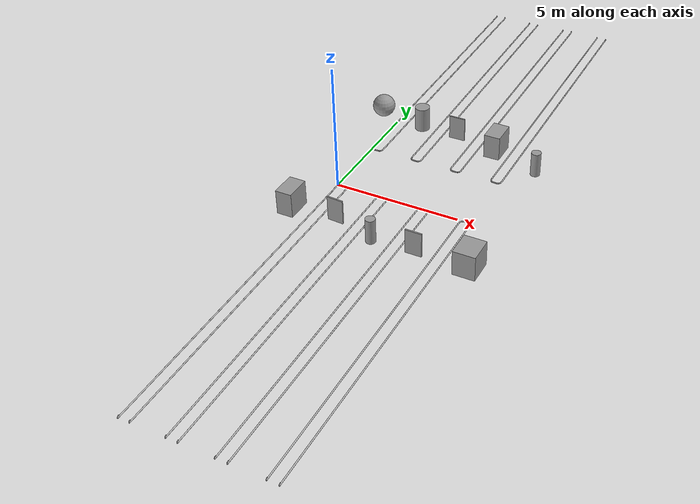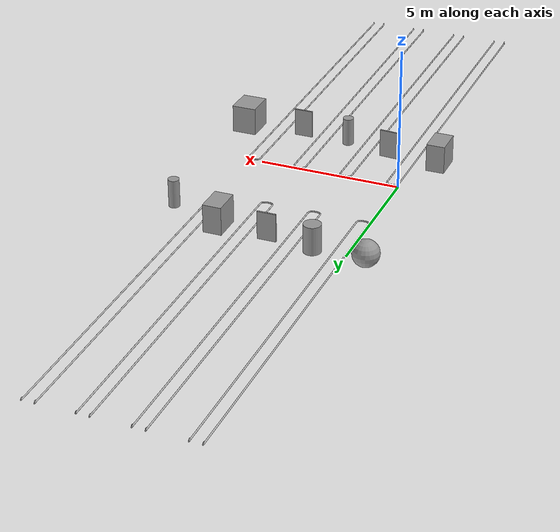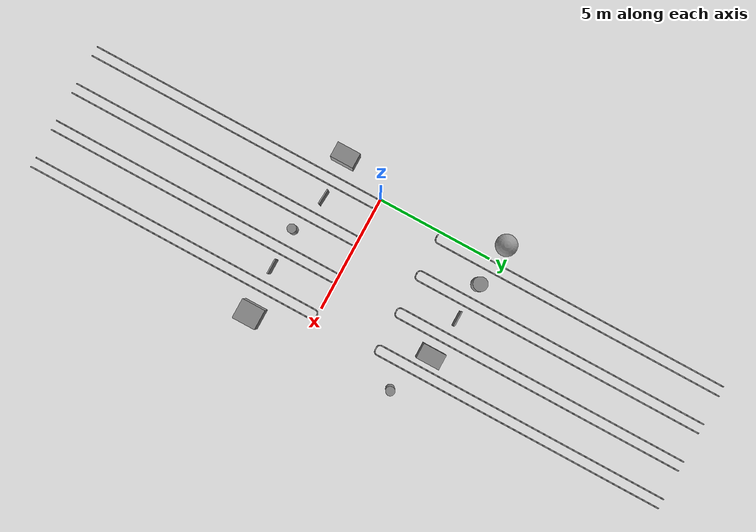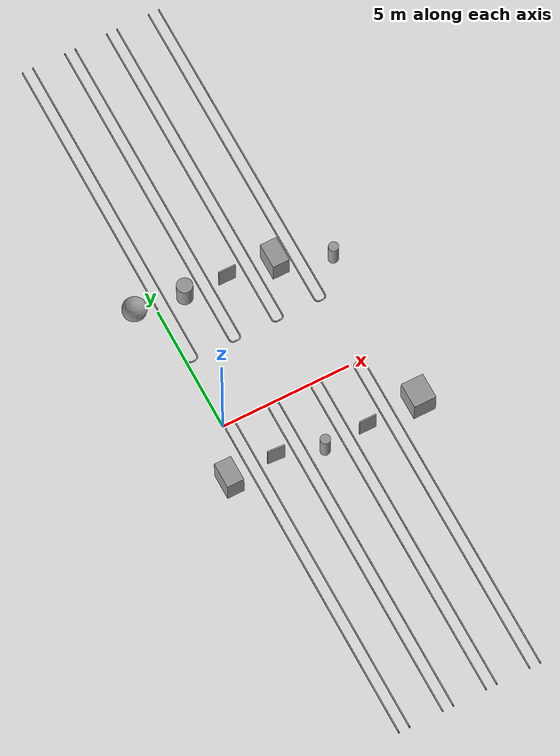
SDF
<sdf version="1.7">
 <world name="default">
  <light name="sun" type="directional">
   <pose>0 0 10 0 -0 0</pose>
   <diffuse>0.8 0.8 0.8 1</diffuse>
   <specular>0.2 0.2 0.2 1</specular>
   <attenuation>
    <range>1000</range>
    <constant>0.9</constant>
    <linear>0.01</linear>
    <quadratic>0.001</quadratic>
   </attenuation>
   <direction>-0.5 0.1 -0.9</direction>
   <spot><inner_angle>0</inner_angle><outer_angle>0</outer_angle><falloff>0</falloff></spot>
  </light>
  <model name="ground_plane">
   <static>1</static>
   <link name="link">
    <collision name="collision">
     <geometry><plane><normal>0 0 1</normal><size>100 100</size></plane></geometry>
     <surface><friction><ode><mu>10</mu><mu2>5</mu2></ode></friction></surface>
    </collision>
   </link>
  </model>
  <model name="rail_1">
   <static>1</static>
   <link name="link">
    <collision name="collision">
     <geometry><mesh><uri>model://rail/ExtendedTubeRail.dae</uri><scale>0.001 0.001 0.001</scale></mesh></geometry>
    </collision>
    <visual name="visual">
     <geometry><mesh><uri>model://rail/ExtendedTubeRail.dae</uri><scale>0.001 0.001 0.001</scale></mesh></geometry>
    </visual>
   </link>
   <pose>0 0 0.01265 1.57 -0 -3.14159</pose>
  </model>
  <gravity>0 0 -9.8</gravity>
  <magnetic_field>6e-06 2.3e-05 -4.2e-05</magnetic_field>
  <atmosphere type="adiabatic"/>
  <physics type="ode">
   <max_step_size>0.001</max_step_size>
   <real_time_factor>1</real_time_factor>
   <real_time_update_rate>1000</real_time_update_rate>
  </physics>
  <scene><ambient>0.4 0.4 0.4 1</ambient><background>0.7 0.7 0.7 1</background><shadows>1</shadows></scene>
  <spherical_coordinates>
   <surface_model>EARTH_WGS84</surface_model>
   <latitude_deg>0</latitude_deg>
   <longitude_deg>0</longitude_deg>
   <elevation>0</elevation>
   <heading_deg>0</heading_deg>
  </spherical_coordinates>
  <model name="rail_2">
   <static>1</static>
   <link name="link">
    <collision name="collision">
     <geometry><mesh><uri>model://rail/ExtendedTubeRail.dae</uri><scale>0.001 0.001 0.001</scale></mesh></geometry>
    </collision>
    <visual name="visual">
     <geometry><mesh><uri>model://rail/ExtendedTubeRail.dae</uri><scale>0.001 0.001 0.001</scale></mesh></geometry>
    </visual>
   </link>
   <pose>1.7038 0 0.01265 1.57 -0 -3.14159</pose>
  </model>
  <model name="rail_3">
   <static>1</static>
   <link name="link">
    <collision name="collision">
     <geometry><mesh><uri>model://rail/ExtendedTubeRail.dae</uri><scale>0.001 0.001 0.001</scale></mesh></geometry>
    </collision>
    <visual name="visual">
     <geometry><mesh><uri>model://rail/ExtendedTubeRail.dae</uri><scale>0.001 0.001 0.001</scale></mesh></geometry>
    </visual>
   </link>
   <pose>3.4076 0 0.01265 1.57 -0 -3.14159</pose>
  </model>
  <model name="rail_4">
   <static>1</static>
   <link name="link">
    <collision name="collision">
     <geometry><mesh><uri>model://rail/ExtendedTubeRail.dae</uri><scale>0.001 0.001 0.001</scale></mesh></geometry>
    </collision>
    <visual name="visual">
     <geometry><mesh><uri>model://rail/ExtendedTubeRail.dae</uri><scale>0.001 0.001 0.001</scale></mesh></geometry>
    </visual>
   </link>
   <pose>5.1114 0 0.01265 1.57 -0 -3.14159</pose>
  </model>
  <model name="rail_5">
   <static>1</static>
   <link name="link">
    <collision name="collision">
     <geometry><mesh><uri>model://rail/ExtendedTubeRail.dae</uri><scale>0.001 0.001 0.001</scale></mesh></geometry>
    </collision>
    <visual name="visual">
     <geometry><mesh><uri>model://rail/ExtendedTubeRail.dae</uri><scale>0.001 0.001 0.001</scale></mesh></geometry>
    </visual>
   </link>
   <pose>0.4754 2.676 0.01265 1.57159 -0 3e-06</pose>
  </model>
  <model name="rail_6">
   <static>1</static>
   <link name="link">
    <collision name="collision">
     <geometry><mesh><uri>model://rail/ExtendedTubeRail.dae</uri><scale>0.001 0.001 0.001</scale></mesh></geometry>
    </collision>
    <visual name="visual">
     <geometry><mesh><uri>model://rail/ExtendedTubeRail.dae</uri><scale>0.001 0.001 0.001</scale></mesh></geometry>
    </visual>
   </link>
   <pose>2.1792 2.676 0.01265 1.57159 -0 3e-06</pose>
  </model>
  <model name="rail_7">
   <static>1</static>
   <link name="link">
    <collision name="collision">
     <geometry><mesh><uri>model://rail/ExtendedTubeRail.dae</uri><scale>0.001 0.001 0.001</scale></mesh></geometry>
    </collision>
    <visual name="visual">
     <geometry><mesh><uri>model://rail/ExtendedTubeRail.dae</uri><scale>0.001 0.001 0.001</scale></mesh></geometry>
    </visual>
   </link>
   <pose>3.883 2.676 0.01265 1.57159 -0 3e-06</pose>
  </model>
  <model name="rail_8">
   <static>1</static>
   <link name="link">
    <collision name="collision">
     <geometry><mesh><uri>model://rail/ExtendedTubeRail.dae</uri><scale>0.001 0.001 0.001</scale></mesh></geometry>
    </collision>
    <visual name="visual">
     <geometry><mesh><uri>model://rail/ExtendedTubeRail.dae</uri><scale>0.001 0.001 0.001</scale></mesh></geometry>
    </visual>
   </link>
   <pose>5.5868 2.676 0.01265 1.57159 -0 3e-06</pose>
  </model>
  <model name="unit_box">
   <pose>-0.804892 -2.01882 0.5 0 -0 -4e-06</pose>
   <link name="link">
    <inertial>
     <mass>1</mass>
     <inertia>
      <ixx>0.166667</ixx>
      <ixy>0</ixy>
      <ixz>0</ixz>
      <iyy>0.166667</iyy>
      <iyz>0</iyz>
      <izz>0.166667</izz>
     </inertia>
    </inertial>
    <collision name="collision"><geometry><box><size>0.65196 1 1</size></box></geometry></collision>
    <visual name="visual">
     <geometry><box><size>0.65196 1 1</size></box></geometry>
     <material>
      <script><name>Gazebo/Grey</name><uri>file://media/materials/scripts/gazebo.material</uri></script>
     </material>
    </visual>
   </link>
  </model>
  <model name="unit_box_clone">
   <pose>1.0497 -2.00045 0.499999 -1e-06 -4e-06 -0.06767</pose>
   <link name="link">
    <inertial>
     <mass>1</mass>
     <inertia>
      <ixx>0.166667</ixx>
      <ixy>0</ixy>
      <ixz>0</ixz>
      <iyy>0.166667</iyy>
      <iyz>0</iyz>
      <izz>0.166667</izz>
     </inertia>
    </inertial>
    <collision name="collision"><geometry><box><size>0.65196 0.0580362 1</size></box></geometry></collision>
    <visual name="visual">
     <geometry><box><size>0.65196 0.0580362 1</size></box></geometry>
     <material>
      <script><name>Gazebo/Grey</name><uri>file://media/materials/scripts/gazebo.material</uri></script>
     </material>
    </visual>
   </link>
  </model>
  <model name="unit_box_clone_clone">
   <pose>2.74028 4.94772 0.499998 1e-06 -5e-06 0.001645</pose>
   <link name="link">
    <inertial>
     <mass>1</mass>
     <inertia>
      <ixx>0.166667</ixx>
      <ixy>0</ixy>
      <ixz>0</ixz>
      <iyy>0.166667</iyy>
      <iyz>0</iyz>
      <izz>0.166667</izz>
     </inertia>
    </inertial>
    <collision name="collision"><geometry><box><size>0.658369 0.058035 1</size></box></geometry></collision>
    <visual name="visual">
     <geometry><box><size>0.658369 0.058035 1</size></box></geometry>
     <material>
      <script><name>Gazebo/Grey</name><uri>file://media/materials/scripts/gazebo.material</uri></script>
     </material>
    </visual>
   </link>
  </model>
  <model name="unit_cylinder">
   <pose>2.74275 -2.48143 0.499999 0 -0 1.1e-05</pose>
   <link name="link">
    <inertial>
     <mass>1</mass>
     <inertia><ixx>0.145833</ixx><ixy>0</ixy><ixz>0</ixz><iyy>0.145833</iyy><iyz>0</iyz><izz>0.125</izz></inertia>
    </inertial>
    <collision name="collision">
     <geometry><cylinder><radius>0.191527</radius><length>1</length></cylinder></geometry>
    </collision>
    <visual name="visual">
     <geometry><cylinder><radius>0.191527</radius><length>1</length></cylinder></geometry>
     <material>
      <script><name>Gazebo/Grey</name><uri>file://media/materials/scripts/gazebo.material</uri></script>
     </material>
    </visual>
   </link>
  </model>
  <model name="unit_cylinder_clone">
   <pose>1.11924 5.07252 0.499992 1e-06 1e-06 0</pose>
   <link name="link">
    <inertial>
     <mass>1</mass>
     <inertia><ixx>0.145833</ixx><ixy>0</ixy><ixz>0</ixz><iyy>0.145833</iyy><iyz>0</iyz><izz>0.125</izz></inertia>
    </inertial>
    <collision name="collision">
     <geometry><cylinder><radius>0.301147</radius><length>1</length></cylinder></geometry>
    </collision>
    <visual name="visual">
     <geometry><cylinder><radius>0.301147</radius><length>1</length></cylinder></geometry>
     <material>
      <script><name>Gazebo/Grey</name><uri>file://media/materials/scripts/gazebo.material</uri></script>
     </material>
    </visual>
   </link>
  </model>
  <model name="unit_box_clone_clone_0">
   <pose>4.42582 -2.47364 0.5 -1e-06 0 -3e-06</pose>
   <link name="link">
    <inertial>
     <mass>1</mass>
     <inertia>
      <ixx>0.166667</ixx>
      <ixy>0</ixy>
      <ixz>0</ixz>
      <iyy>0.166667</iyy>
      <iyz>0</iyz>
      <izz>0.166667</izz>
     </inertia>
    </inertial>
    <collision name="collision"><geometry><box><size>0.65196 0.058035 1</size></box></geometry></collision>
    <visual name="visual">
     <geometry><box><size>0.65196 0.058035 1</size></box></geometry>
     <material>
      <script><name>Gazebo/Grey</name><uri>file://media/materials/scripts/gazebo.material</uri></script>
     </material>
    </visual>
   </link>
  </model>
  <model name="unit_box_clone_0">
   <pose>4.53775 4.7334 0.500001 0 -3e-06 0</pose>
   <link name="link">
    <inertial>
     <mass>1</mass>
     <inertia>
      <ixx>0.166667</ixx>
      <ixy>0</ixy>
      <ixz>0</ixz>
      <iyy>0.166667</iyy>
      <iyz>0</iyz>
      <izz>0.166667</izz>
     </inertia>
    </inertial>
    <collision name="collision"><geometry><box><size>0.65196 1 1</size></box></geometry></collision>
    <visual name="visual">
     <geometry><box><size>0.65196 1 1</size></box></geometry>
     <material>
      <script><name>Gazebo/Grey</name><uri>file://media/materials/scripts/gazebo.material</uri></script>
     </material>
    </visual>
   </link>
  </model>
  <model name="unit_cylinder_clone_0_clone">
   <pose>6.48943 3.96647 0.499991 0 -0 1.1e-05</pose>
   <link name="link">
    <inertial>
     <mass>1</mass>
     <inertia><ixx>0.145833</ixx><ixy>0</ixy><ixz>0</ixz><iyy>0.145833</iyy><iyz>0</iyz><izz>0.125</izz></inertia>
    </inertial>
    <collision name="collision">
     <geometry><cylinder><radius>0.191527</radius><length>1</length></cylinder></geometry>
    </collision>
    <visual name="visual">
     <geometry><cylinder><radius>0.191527</radius><length>1</length></cylinder></geometry>
     <material>
      <script><name>Gazebo/Grey</name><uri>file://media/materials/scripts/gazebo.material</uri></script>
     </material>
    </visual>
   </link>
  </model>
  <model name="unit_box_clone_1">
   <pose>6.50066 -2.36371 0.499995 -1e-05 -0 7.4e-05</pose>
   <link name="link">
    <inertial>
     <mass>1</mass>
     <inertia>
      <ixx>0.166667</ixx>
      <ixy>0</ixy>
      <ixz>0</ixz>
      <iyy>0.166667</iyy>
      <iyz>0</iyz>
      <izz>0.166667</izz>
     </inertia>
    </inertial>
    <collision name="collision"><geometry><box><size>0.862074 1 1</size></box></geometry></collision>
    <visual name="visual">
     <geometry><box><size>0.862074 1 1</size></box></geometry>
     <material>
      <script><name>Gazebo/Grey</name><uri>file://media/materials/scripts/gazebo.material</uri></script>
     </material>
    </visual>
   </link>
  </model>
  <model name="unit_sphere">
   <pose>-0.768319 5.29502 0.460794 0 -0 0</pose>
   <link name="link">
    <inertial>
     <mass>1</mass>
     <inertia><ixx>0.1</ixx><ixy>0</ixy><ixz>0</ixz><iyy>0.1</iyy><iyz>0</iyz><izz>0.1</izz></inertia>
    </inertial>
    <collision name="collision"><geometry><sphere><radius>0.460794</radius></sphere></geometry></collision>
    <visual name="visual">
     <geometry><sphere><radius>0.460794</radius></sphere></geometry>
     <material>
      <script><name>Gazebo/Grey</name><uri>file://media/materials/scripts/gazebo.material</uri></script>
     </material>
    </visual>
   </link>
  </model>
 </world>
</sdf>
